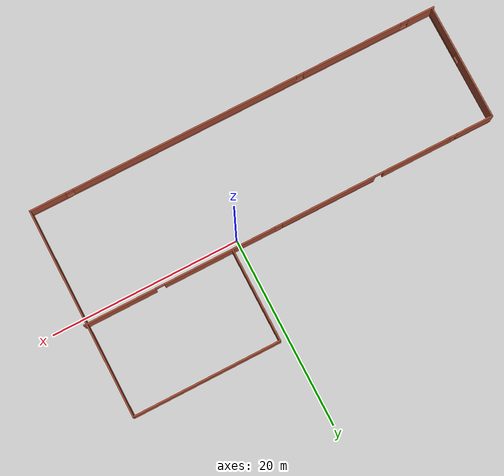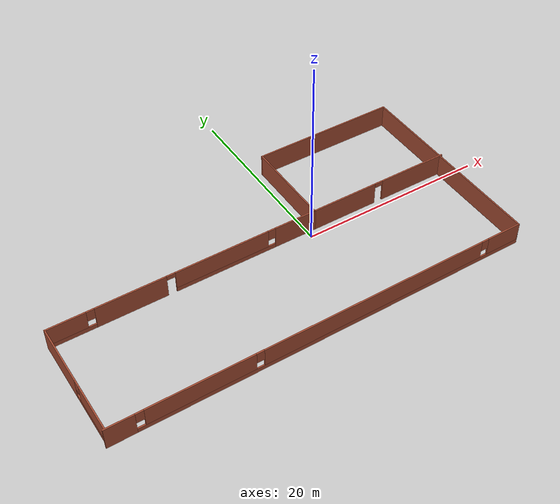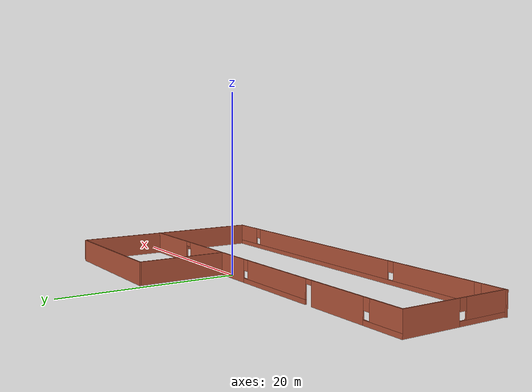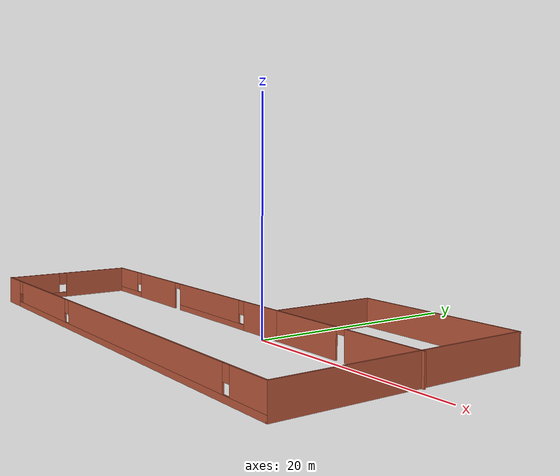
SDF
<?xml version='1.0'?>
<sdf version='1.6'>
  <model name='house'>
    <pose frame=''>-5.45782 -0.400971 0 0 -0 0</pose>
    <link name='Wall_0'>
      <pose frame=''>-0.125 -11.05 0 0 -0 0</pose>
      <visual name='Wall_0_Visual_0'>
        <pose frame=''>-20.6735 0 1.25 0 -0 0</pose>
        <geometry>
          <box>
            <size>2.90296 0.15 2.5</size>
          </box>
        </geometry>
        <material>
          <script>
            <uri>file://media/materials/scripts/gazebo.material</uri>
            <name>Gazebo/Bricks</name>
          </script>
          <ambient>1 1 1 1</ambient>
        </material>
        <meta>
          <layer>0</layer>
        </meta>
      </visual>
      <collision name='Wall_0_Collision_0'>
        <geometry>
          <box>
            <size>2.90296 0.15 2.5</size>
          </box>
        </geometry>
        <pose frame=''>-20.6735 0 1.25 0 -0 0</pose>
      </collision>
      <visual name='Wall_0_Visual_1'>
        <pose frame=''>1.45148 0 0.25 0 -0 0</pose>
        <geometry>
          <box>
            <size>41.347 0.15 0.5</size>
          </box>
        </geometry>
        <material>
          <script>
            <uri>file://media/materials/scripts/gazebo.material</uri>
            <name>Gazebo/Bricks</name>
          </script>
          <ambient>1 1 1 1</ambient>
        </material>
        <meta>
          <layer>0</layer>
        </meta>
      </visual>
      <collision name='Wall_0_Collision_1'>
        <geometry>
          <box>
            <size>41.347 0.15 0.5</size>
          </box>
        </geometry>
        <pose frame=''>1.45148 0 0.25 0 -0 0</pose>
      </collision>
      <visual name='Wall_0_Visual_2'>
        <pose frame=''>-13.0384 0 1.5 0 -0 0</pose>
        <geometry>
          <box>
            <size>10.7672 0.15 2</size>
          </box>
        </geometry>
        <material>
          <script>
            <uri>file://media/materials/scripts/gazebo.material</uri>
            <name>Gazebo/Bricks</name>
          </script>
          <ambient>1 1 1 1</ambient>
        </material>
        <meta>
          <layer>0</layer>
        </meta>
      </visual>
      <collision name='Wall_0_Collision_2'>
        <geometry>
          <box>
            <size>10.7672 0.15 2</size>
          </box>
        </geometry>
        <pose frame=''>-13.0384 0 1.5 0 -0 0</pose>
      </collision>
      <visual name='Wall_0_Visual_3'>
        <pose frame=''>5.29689 0 1.5 0 -0 0</pose>
        <geometry>
          <box>
            <size>24.3034 0.15 2</size>
          </box>
        </geometry>
        <material>
          <script>
            <uri>file://media/materials/scripts/gazebo.material</uri>
            <name>Gazebo/Bricks</name>
          </script>
          <ambient>1 1 1 1</ambient>
        </material>
        <meta>
          <layer>0</layer>
        </meta>
      </visual>
      <collision name='Wall_0_Collision_3'>
        <geometry>
          <box>
            <size>24.3034 0.15 2</size>
          </box>
        </geometry>
        <pose frame=''>5.29689 0 1.5 0 -0 0</pose>
      </collision>
      <visual name='Wall_0_Visual_4'>
        <pose frame=''>20.1868 0 1.5 0 -0 0</pose>
        <geometry>
          <box>
            <size>3.87643 0.15 2</size>
          </box>
        </geometry>
        <material>
          <script>
            <uri>file://media/materials/scripts/gazebo.material</uri>
            <name>Gazebo/Bricks</name>
          </script>
          <ambient>1 1 1 1</ambient>
        </material>
        <meta>
          <layer>0</layer>
        </meta>
      </visual>
      <collision name='Wall_0_Collision_4'>
        <geometry>
          <box>
            <size>3.87643 0.15 2</size>
          </box>
        </geometry>
        <pose frame=''>20.1868 0 1.5 0 -0 0</pose>
      </collision>
      <visual name='Wall_0_Visual_5'>
        <pose frame=''>-18.822 0 1.9 0 -0 0</pose>
        <geometry>
          <box>
            <size>0.8 0.15 1.2</size>
          </box>
        </geometry>
        <material>
          <script>
            <uri>file://media/materials/scripts/gazebo.material</uri>
            <name>Gazebo/Bricks</name>
          </script>
          <ambient>1 1 1 1</ambient>
        </material>
        <meta>
          <layer>0</layer>
        </meta>
      </visual>
      <collision name='Wall_0_Collision_5'>
        <geometry>
          <box>
            <size>0.8 0.15 1.2</size>
          </box>
        </geometry>
        <pose frame=''>-18.822 0 1.9 0 -0 0</pose>
      </collision>
      <visual name='Wall_0_Visual_6'>
        <pose frame=''>-7.2548 0 1.9 0 -0 0</pose>
        <geometry>
          <box>
            <size>0.8 0.15 1.2</size>
          </box>
        </geometry>
        <material>
          <script>
            <uri>file://media/materials/scripts/gazebo.material</uri>
            <name>Gazebo/Bricks</name>
          </script>
          <ambient>1 1 1 1</ambient>
        </material>
        <meta>
          <layer>0</layer>
        </meta>
      </visual>
      <collision name='Wall_0_Collision_6'>
        <geometry>
          <box>
            <size>0.8 0.15 1.2</size>
          </box>
        </geometry>
        <pose frame=''>-7.2548 0 1.9 0 -0 0</pose>
      </collision>
      <visual name='Wall_0_Visual_7'>
        <pose frame=''>17.8486 0 1.9 0 -0 0</pose>
        <geometry>
          <box>
            <size>0.8 0.15 1.2</size>
          </box>
        </geometry>
        <material>
          <script>
            <uri>file://media/materials/scripts/gazebo.material</uri>
            <name>Gazebo/Bricks</name>
          </script>
          <ambient>1 1 1 1</ambient>
        </material>
        <meta>
          <layer>0</layer>
        </meta>
      </visual>
      <collision name='Wall_0_Collision_7'>
        <geometry>
          <box>
            <size>0.8 0.15 1.2</size>
          </box>
        </geometry>
        <pose frame=''>17.8486 0 1.9 0 -0 0</pose>
      </collision>
    </link>
    <link name='Wall_1'>
      <collision name='Wall_1_Collision'>
        <geometry>
          <box>
            <size>22.25 0.15 2.5</size>
          </box>
        </geometry>
        <pose frame=''>0 0 1.25 0 -0 0</pose>
      </collision>
      <visual name='Wall_1_Visual'>
        <pose frame=''>0 0 1.25 0 -0 0</pose>
        <geometry>
          <box>
            <size>22.25 0.15 2.5</size>
          </box>
        </geometry>
        <material>
          <script>
            <uri>file://media/materials/scripts/gazebo.material</uri>
            <name>Gazebo/Bricks</name>
          </script>
          <ambient>1 1 1 1</ambient>
        </material>
        <meta>
          <layer>0</layer>
        </meta>
      </visual>
      <pose frame=''>21.925 0 0 0 -0 1.5708</pose>
    </link>
    <link name='Wall_2'>
      <collision name='Wall_2_Collision'>
        <geometry>
          <box>
            <size>15.75 0.15 2.5</size>
          </box>
        </geometry>
        <pose frame=''>0 0 1.25 0 -0 0</pose>
      </collision>
      <visual name='Wall_2_Visual'>
        <pose frame=''>0 0 1.25 0 -0 0</pose>
        <geometry>
          <box>
            <size>15.75 0.15 2.5</size>
          </box>
        </geometry>
        <material>
          <script>
            <uri>file://media/materials/scripts/gazebo.material</uri>
            <name>Gazebo/Bricks</name>
          </script>
          <ambient>1 1 1 1</ambient>
        </material>
        <meta>
          <layer>0</layer>
        </meta>
      </visual>
      <pose frame=''>14.125 11.05 0 0 -0 3.14159</pose>
    </link>
    <link name='Wall_3'>
      <collision name='Wall_3_Collision'>
        <geometry>
          <box>
            <size>10 0.15 2.5</size>
          </box>
        </geometry>
        <pose frame=''>0 0 1.25 0 -0 0</pose>
      </collision>
      <visual name='Wall_3_Visual'>
        <pose frame=''>0 0 1.25 0 -0 0</pose>
        <geometry>
          <box>
            <size>10 0.15 2.5</size>
          </box>
        </geometry>
        <material>
          <script>
            <uri>file://media/materials/scripts/gazebo.material</uri>
            <name>Gazebo/Bricks</name>
          </script>
          <ambient>1 1 1 1</ambient>
        </material>
        <meta>
          <layer>0</layer>
        </meta>
      </visual>
      <pose frame=''>6.325 6.125 0 0 0 -1.5708</pose>
    </link>
    <link name='Wall_4'>
      <pose frame=''>-7.85 1.2 0 0 -0 3.14159</pose>
      <visual name='Wall_4_Visual_0'>
        <pose frame=''>-11.9286 0 1.25 0 -0 0</pose>
        <geometry>
          <box>
            <size>4.64284 0.15 2.5</size>
          </box>
        </geometry>
        <material>
          <script>
            <uri>file://media/materials/scripts/gazebo.material</uri>
            <name>Gazebo/Bricks</name>
          </script>
          <ambient>1 1 1 1</ambient>
        </material>
        <meta>
          <layer>0</layer>
        </meta>
      </visual>
      <collision name='Wall_4_Collision_0'>
        <geometry>
          <box>
            <size>4.64284 0.15 2.5</size>
          </box>
        </geometry>
        <pose frame=''>-11.9286 0 1.25 0 -0 0</pose>
      </collision>
      <visual name='Wall_4_Visual_1'>
        <pose frame=''>5.83064 0 1.25 0 -0 0</pose>
        <geometry>
          <box>
            <size>7.27168 0.15 2.5</size>
          </box>
        </geometry>
        <material>
          <script>
            <uri>file://media/materials/scripts/gazebo.material</uri>
            <name>Gazebo/Bricks</name>
          </script>
          <ambient>1 1 1 1</ambient>
        </material>
        <meta>
          <layer>0</layer>
        </meta>
      </visual>
      <collision name='Wall_4_Collision_1'>
        <geometry>
          <box>
            <size>7.27168 0.15 2.5</size>
          </box>
        </geometry>
        <pose frame=''>5.83064 0 1.25 0 -0 0</pose>
      </collision>
      <visual name='Wall_4_Visual_2'>
        <pose frame=''>-4.15618 0 0.25 0 -0 0</pose>
        <geometry>
          <box>
            <size>10.902 0.15 0.5</size>
          </box>
        </geometry>
        <material>
          <script>
            <uri>file://media/materials/scripts/gazebo.material</uri>
            <name>Gazebo/Bricks</name>
          </script>
          <ambient>1 1 1 1</ambient>
        </material>
        <meta>
          <layer>0</layer>
        </meta>
      </visual>
      <collision name='Wall_4_Collision_2'>
        <geometry>
          <box>
            <size>10.902 0.15 0.5</size>
          </box>
        </geometry>
        <pose frame=''>-4.15618 0 0.25 0 -0 0</pose>
      </collision>
      <visual name='Wall_4_Visual_3'>
        <pose frame=''>11.8582 0 0.25 0 -0 0</pose>
        <geometry>
          <box>
            <size>4.78352 0.15 0.5</size>
          </box>
        </geometry>
        <material>
          <script>
            <uri>file://media/materials/scripts/gazebo.material</uri>
            <name>Gazebo/Bricks</name>
          </script>
          <ambient>1 1 1 1</ambient>
        </material>
        <meta>
          <layer>0</layer>
        </meta>
      </visual>
      <collision name='Wall_4_Collision_3'>
        <geometry>
          <box>
            <size>4.78352 0.15 0.5</size>
          </box>
        </geometry>
        <pose frame=''>11.8582 0 0.25 0 -0 0</pose>
      </collision>
      <visual name='Wall_4_Visual_4'>
        <pose frame=''>-3.75618 0 1.5 0 -0 0</pose>
        <geometry>
          <box>
            <size>10.102 0.15 2</size>
          </box>
        </geometry>
        <material>
          <script>
            <uri>file://media/materials/scripts/gazebo.material</uri>
            <name>Gazebo/Bricks</name>
          </script>
          <ambient>1 1 1 1</ambient>
        </material>
        <meta>
          <layer>0</layer>
        </meta>
      </visual>
      <collision name='Wall_4_Collision_4'>
        <geometry>
          <box>
            <size>10.102 0.15 2</size>
          </box>
        </geometry>
        <pose frame=''>-3.75618 0 1.5 0 -0 0</pose>
      </collision>
      <visual name='Wall_4_Visual_5'>
        <pose frame=''>-3.75618 0 1.5 0 -0 0</pose>
        <geometry>
          <box>
            <size>10.102 0.15 2</size>
          </box>
        </geometry>
        <material>
          <script>
            <uri>file://media/materials/scripts/gazebo.material</uri>
            <name>Gazebo/Bricks</name>
          </script>
          <ambient>1 1 1 1</ambient>
        </material>
        <meta>
          <layer>0</layer>
        </meta>
      </visual>
      <collision name='Wall_4_Collision_5'>
        <geometry>
          <box>
            <size>10.102 0.15 2</size>
          </box>
        </geometry>
        <pose frame=''>-3.75618 0 1.5 0 -0 0</pose>
      </collision>
      <visual name='Wall_4_Visual_6'>
        <pose frame=''>12.2582 0 1.5 0 -0 0</pose>
        <geometry>
          <box>
            <size>3.98352 0.15 2</size>
          </box>
        </geometry>
        <material>
          <script>
            <uri>file://media/materials/scripts/gazebo.material</uri>
            <name>Gazebo/Bricks</name>
          </script>
          <ambient>1 1 1 1</ambient>
        </material>
        <meta>
          <layer>0</layer>
        </meta>
      </visual>
      <collision name='Wall_4_Collision_6'>
        <geometry>
          <box>
            <size>3.98352 0.15 2</size>
          </box>
        </geometry>
        <pose frame=''>12.2582 0 1.5 0 -0 0</pose>
      </collision>
      <visual name='Wall_4_Visual_7'>
        <pose frame=''>-9.20716 0 1.9 0 -0 0</pose>
        <geometry>
          <box>
            <size>0.8 0.15 1.2</size>
          </box>
        </geometry>
        <material>
          <script>
            <uri>file://media/materials/scripts/gazebo.material</uri>
            <name>Gazebo/Bricks</name>
          </script>
          <ambient>1 1 1 1</ambient>
        </material>
        <meta>
          <layer>0</layer>
        </meta>
      </visual>
      <collision name='Wall_4_Collision_7'>
        <geometry>
          <box>
            <size>0.8 0.15 1.2</size>
          </box>
        </geometry>
        <pose frame=''>-9.20716 0 1.9 0 -0 0</pose>
      </collision>
      <visual name='Wall_4_Visual_8'>
        <pose frame=''>9.86648 0 1.9 0 -0 0</pose>
        <geometry>
          <box>
            <size>0.8 0.15 1.2</size>
          </box>
        </geometry>
        <material>
          <script>
            <uri>file://media/materials/scripts/gazebo.material</uri>
            <name>Gazebo/Bricks</name>
          </script>
          <ambient>1 1 1 1</ambient>
        </material>
        <meta>
          <layer>0</layer>
        </meta>
      </visual>
      <collision name='Wall_4_Collision_8'>
        <geometry>
          <box>
            <size>0.8 0.15 1.2</size>
          </box>
        </geometry>
        <pose frame=''>9.86648 0 1.9 0 -0 0</pose>
      </collision>
      <visual name='Wall_4_Visual_9'>
        <pose frame=''>1.7448 0 2.25 0 -0 0</pose>
        <geometry>
          <box>
            <size>0.9 0.15 0.5</size>
          </box>
        </geometry>
        <material>
          <script>
            <uri>file://media/materials/scripts/gazebo.material</uri>
            <name>Gazebo/Bricks</name>
          </script>
          <ambient>1 1 1 1</ambient>
        </material>
        <meta>
          <layer>0</layer>
        </meta>
      </visual>
      <collision name='Wall_4_Collision_9'>
        <geometry>
          <box>
            <size>0.9 0.15 0.5</size>
          </box>
        </geometry>
        <pose frame=''>1.7448 0 2.25 0 -0 0</pose>
      </collision>
      <visual name='Wall_4_Visual_10'>
        <pose frame=''>1.7448 0 2.25 0 -0 0</pose>
        <geometry>
          <box>
            <size>0.9 0.15 0.5</size>
          </box>
        </geometry>
        <material>
          <script>
            <uri>file://media/materials/scripts/gazebo.material</uri>
            <name>Gazebo/Bricks</name>
          </script>
          <ambient>1 1 1 1</ambient>
        </material>
        <meta>
          <layer>0</layer>
        </meta>
      </visual>
      <collision name='Wall_4_Collision_10'>
        <geometry>
          <box>
            <size>0.9 0.15 0.5</size>
          </box>
        </geometry>
        <pose frame=''>1.7448 0 2.25 0 -0 0</pose>
      </collision>
    </link>
    <link name='Wall_5'>
      <pose frame=''>-22.025 -4.85 0 0 0 -1.5708</pose>
      <visual name='Wall_5_Visual_0'>
        <pose frame=''>-2.87428 0 1.25 0 -0 0</pose>
        <geometry>
          <box>
            <size>6.50144 0.15 2.5</size>
          </box>
        </geometry>
        <material>
          <script>
            <uri>file://media/materials/scripts/gazebo.material</uri>
            <name>Gazebo/Bricks</name>
          </script>
          <ambient>1 1 1 1</ambient>
        </material>
        <meta>
          <layer>0</layer>
        </meta>
      </visual>
      <collision name='Wall_5_Collision_0'>
        <geometry>
          <box>
            <size>6.50144 0.15 2.5</size>
          </box>
        </geometry>
        <pose frame=''>-2.87428 0 1.25 0 -0 0</pose>
      </collision>
      <visual name='Wall_5_Visual_1'>
        <pose frame=''>3.25072 0 0.25 0 -0 0</pose>
        <geometry>
          <box>
            <size>5.74856 0.15 0.5</size>
          </box>
        </geometry>
        <material>
          <script>
            <uri>file://media/materials/scripts/gazebo.material</uri>
            <name>Gazebo/Bricks</name>
          </script>
          <ambient>1 1 1 1</ambient>
        </material>
        <meta>
          <layer>0</layer>
        </meta>
      </visual>
      <collision name='Wall_5_Collision_1'>
        <geometry>
          <box>
            <size>5.74856 0.15 0.5</size>
          </box>
        </geometry>
        <pose frame=''>3.25072 0 0.25 0 -0 0</pose>
      </collision>
      <visual name='Wall_5_Visual_2'>
        <pose frame=''>3.65072 0 1.5 0 -0 0</pose>
        <geometry>
          <box>
            <size>4.94856 0.15 2</size>
          </box>
        </geometry>
        <material>
          <script>
            <uri>file://media/materials/scripts/gazebo.material</uri>
            <name>Gazebo/Bricks</name>
          </script>
          <ambient>1 1 1 1</ambient>
        </material>
        <meta>
          <layer>0</layer>
        </meta>
      </visual>
      <collision name='Wall_5_Collision_2'>
        <geometry>
          <box>
            <size>4.94856 0.15 2</size>
          </box>
        </geometry>
        <pose frame=''>3.65072 0 1.5 0 -0 0</pose>
      </collision>
      <visual name='Wall_5_Visual_3'>
        <pose frame=''>0.776437 0 1.9 0 -0 0</pose>
        <geometry>
          <box>
            <size>0.8 0.15 1.2</size>
          </box>
        </geometry>
        <material>
          <script>
            <uri>file://media/materials/scripts/gazebo.material</uri>
            <name>Gazebo/Bricks</name>
          </script>
          <ambient>1 1 1 1</ambient>
        </material>
        <meta>
          <layer>0</layer>
        </meta>
      </visual>
      <collision name='Wall_5_Collision_3'>
        <geometry>
          <box>
            <size>0.8 0.15 1.2</size>
          </box>
        </geometry>
        <pose frame=''>0.776437 0 1.9 0 -0 0</pose>
      </collision>
    </link>
    <link name='Wall_7'>
      <pose frame=''>14.25 1.2 0 0 -0 0</pose>
      <visual name='Wall_7_Visual_0'>
        <pose frame=''>-4.30329 0 1.25 0 -0 0</pose>
        <geometry>
          <box>
            <size>7.39343 0.15 2.5</size>
          </box>
        </geometry>
        <material>
          <script>
            <uri>file://media/materials/scripts/gazebo.material</uri>
            <name>Gazebo/Bricks</name>
          </script>
          <ambient>1 1 1 1</ambient>
        </material>
        <meta>
          <layer>0</layer>
        </meta>
      </visual>
      <collision name='Wall_7_Collision_0'>
        <geometry>
          <box>
            <size>7.39343 0.15 2.5</size>
          </box>
        </geometry>
        <pose frame=''>-4.30329 0 1.25 0 -0 0</pose>
      </collision>
      <visual name='Wall_7_Visual_1'>
        <pose frame=''>4.14671 0 1.25 0 -0 0</pose>
        <geometry>
          <box>
            <size>7.70657 0.15 2.5</size>
          </box>
        </geometry>
        <material>
          <script>
            <uri>file://media/materials/scripts/gazebo.material</uri>
            <name>Gazebo/Bricks</name>
          </script>
          <ambient>1 1 1 1</ambient>
        </material>
        <meta>
          <layer>0</layer>
        </meta>
      </visual>
      <collision name='Wall_7_Collision_1'>
        <geometry>
          <box>
            <size>7.70657 0.15 2.5</size>
          </box>
        </geometry>
        <pose frame=''>4.14671 0 1.25 0 -0 0</pose>
      </collision>
      <visual name='Wall_7_Visual_2'>
        <pose frame=''>-0.156572 0 2.25 0 -0 0</pose>
        <geometry>
          <box>
            <size>0.9 0.15 0.5</size>
          </box>
        </geometry>
        <material>
          <script>
            <uri>file://media/materials/scripts/gazebo.material</uri>
            <name>Gazebo/Bricks</name>
          </script>
          <ambient>1 1 1 1</ambient>
        </material>
        <meta>
          <layer>0</layer>
        </meta>
      </visual>
      <collision name='Wall_7_Collision_2'>
        <geometry>
          <box>
            <size>0.9 0.15 0.5</size>
          </box>
        </geometry>
        <pose frame=''>-0.156572 0 2.25 0 -0 0</pose>
      </collision>
    </link>
    <static>1</static>
  </model>
</sdf>
